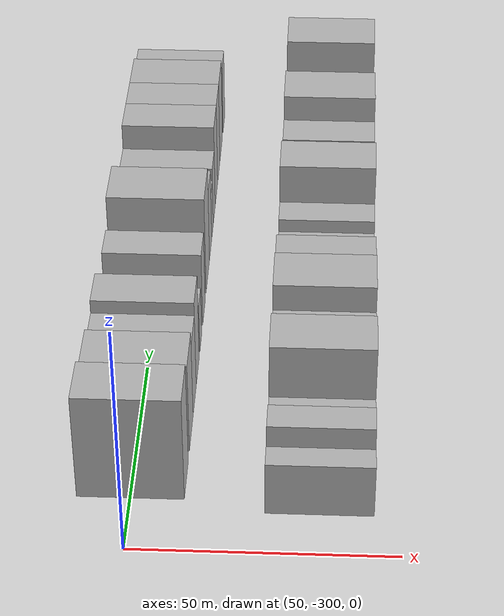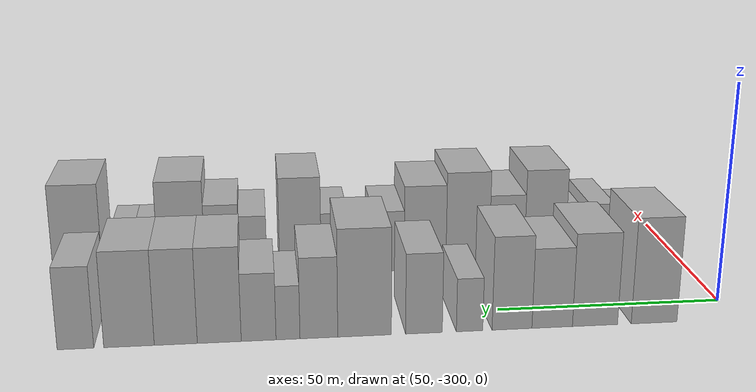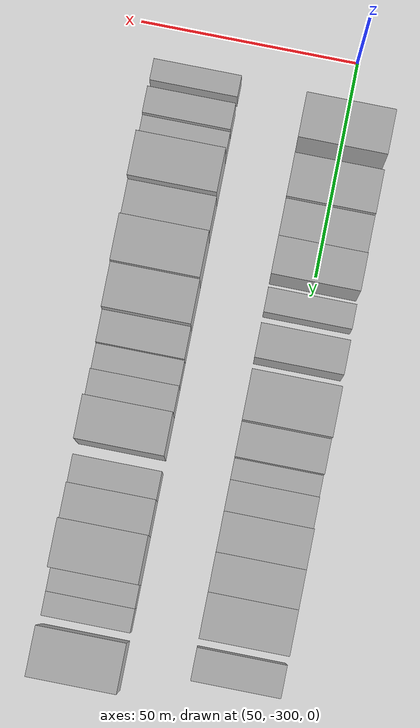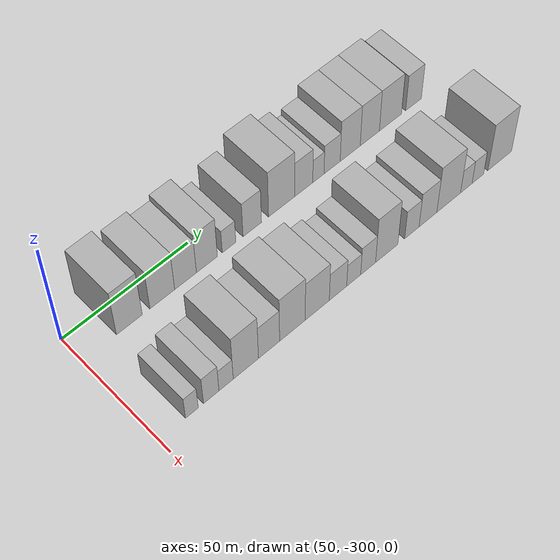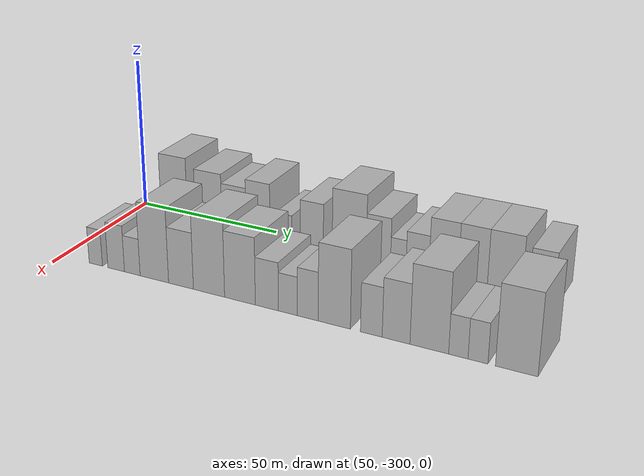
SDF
<sdf version="1.6">
 <world name="default">
  <model name="building_1">
   <static>1</static>
   <pose>50.0000 -281.9514 0 0.000000 0.000000 0.000000</pose>
   <link name="link">
    <pose>0 0 12.00 0 0 0</pose>
    <collision name="collision"><geometry><box><size>20.0000 10.0973 24.0000</size></box></geometry></collision>
    <visual name="visual">
     <cast_shadows>0</cast_shadows>
     <geometry><box><size>20.0000 10.0973 24.0000</size></box></geometry>
     <material>
      <script>
       <uri>model://HANNAS_wall/materials/scripts</uri>
       <uri>model://HANNAS_wall/materials/textures</uri>
       <name>vrc/HANNAS_wall</name>
      </script>
     </material>
    </visual>
   </link>
  </model>
  <model name="building_2">
   <static>1</static>
   <pose>50.0000 -268.9650 0 0.000000 0.000000 0.000000</pose>
   <link name="link">
    <pose>0 0 10.50 0 0 0</pose>
    <collision name="collision"><geometry><box><size>20.0000 9.8755 21.0000</size></box></geometry></collision>
    <visual name="visual">
     <cast_shadows>0</cast_shadows>
     <geometry><box><size>20.0000 9.8755 21.0000</size></box></geometry>
     <material>
      <script>
       <uri>model://HANNAS_wall/materials/scripts</uri>
       <uri>model://HANNAS_wall/materials/textures</uri>
       <name>vrc/HANNAS_wall</name>
      </script>
     </material>
    </visual>
   </link>
  </model>
  <model name="building_3">
   <static>1</static>
   <pose>50.0000 -259.6310 0 0.000000 0.000000 0.000000</pose>
   <link name="link">
    <pose>0 0 9.00 0 0 0</pose>
    <collision name="collision"><geometry><box><size>20.0000 8.7925 18.0000</size></box></geometry></collision>
    <visual name="visual">
     <cast_shadows>0</cast_shadows>
     <geometry><box><size>20.0000 8.7925 18.0000</size></box></geometry>
     <material>
      <script>
       <uri>model://HANNAS_wall/materials/scripts</uri>
       <uri>model://HANNAS_wall/materials/textures</uri>
       <name>vrc/HANNAS_wall</name>
      </script>
     </material>
    </visual>
   </link>
  </model>
  <model name="building_4">
   <static>1</static>
   <pose>50.0000 -250.9372 0 0.000000 0.000000 0.000000</pose>
   <link name="link">
    <pose>0 0 10.50 0 0 0</pose>
    <collision name="collision"><geometry><box><size>20.0000 8.5951 21.0000</size></box></geometry></collision>
    <visual name="visual">
     <cast_shadows>0</cast_shadows>
     <geometry><box><size>20.0000 8.5951 21.0000</size></box></geometry>
     <material>
      <script>
       <uri>model://HANNAS_wall/materials/scripts</uri>
       <uri>model://HANNAS_wall/materials/textures</uri>
       <name>vrc/HANNAS_wall</name>
      </script>
     </material>
    </visual>
   </link>
  </model>
  <model name="building_5">
   <static>1</static>
   <pose>50.0000 -241.8137 0 0.000000 0.000000 0.000000</pose>
   <link name="link">
    <pose>0 0 6.00 0 0 0</pose>
    <collision name="collision"><geometry><box><size>20.0000 5.6519 12.0000</size></box></geometry></collision>
    <visual name="visual">
     <cast_shadows>0</cast_shadows>
     <geometry><box><size>20.0000 5.6519 12.0000</size></box></geometry>
     <material>
      <script>
       <uri>model://HANNAS_wall/materials/scripts</uri>
       <uri>model://HANNAS_wall/materials/textures</uri>
       <name>vrc/HANNAS_wall</name>
      </script>
     </material>
    </visual>
   </link>
  </model>
  <model name="building_6">
   <static>1</static>
   <pose>50.0000 -232.0887 0 0.000000 0.000000 0.000000</pose>
   <link name="link">
    <pose>0 0 9.00 0 0 0</pose>
    <collision name="collision"><geometry><box><size>20.0000 7.7981 18.0000</size></box></geometry></collision>
    <visual name="visual">
     <cast_shadows>0</cast_shadows>
     <geometry><box><size>20.0000 7.7981 18.0000</size></box></geometry>
     <material>
      <script>
       <uri>model://HANNAS_wall/materials/scripts</uri>
       <uri>model://HANNAS_wall/materials/textures</uri>
       <name>vrc/HANNAS_wall</name>
      </script>
     </material>
    </visual>
   </link>
  </model>
  <model name="building_7">
   <static>1</static>
   <pose>50.0000 -219.5472 0 0.000000 0.000000 0.000000</pose>
   <link name="link">
    <pose>0 0 12.00 0 0 0</pose>
    <collision name="collision"><geometry><box><size>20.0000 11.2847 24.0000</size></box></geometry></collision>
    <visual name="visual">
     <cast_shadows>0</cast_shadows>
     <geometry><box><size>20.0000 11.2847 24.0000</size></box></geometry>
     <material>
      <script>
       <uri>model://HANNAS_wall/materials/scripts</uri>
       <uri>model://HANNAS_wall/materials/textures</uri>
       <name>vrc/HANNAS_wall</name>
      </script>
     </material>
    </visual>
   </link>
  </model>
  <model name="building_8">
   <static>1</static>
   <pose>50.0000 -209.9635 0 0.000000 0.000000 0.000000</pose>
   <link name="link">
    <pose>0 0 9.00 0 0 0</pose>
    <collision name="collision"><geometry><box><size>20.0000 7.8828 18.0000</size></box></geometry></collision>
    <visual name="visual">
     <cast_shadows>0</cast_shadows>
     <geometry><box><size>20.0000 7.8828 18.0000</size></box></geometry>
     <material>
      <script>
       <uri>model://HANNAS_wall/materials/scripts</uri>
       <uri>model://HANNAS_wall/materials/textures</uri>
       <name>vrc/HANNAS_wall</name>
      </script>
     </material>
    </visual>
   </link>
  </model>
  <model name="building_9">
   <static>1</static>
   <pose>50.0000 -203.5387 0 0.000000 0.000000 0.000000</pose>
   <link name="link">
    <pose>0 0 6.00 0 0 0</pose>
    <collision name="collision"><geometry><box><size>20.0000 4.9668 12.0000</size></box></geometry></collision>
    <visual name="visual">
     <cast_shadows>0</cast_shadows>
     <geometry><box><size>20.0000 4.9668 12.0000</size></box></geometry>
     <material>
      <script>
       <uri>model://HANNAS_wall/materials/scripts</uri>
       <uri>model://HANNAS_wall/materials/textures</uri>
       <name>vrc/HANNAS_wall</name>
      </script>
     </material>
    </visual>
   </link>
  </model>
  <model name="building_10">
   <static>1</static>
   <pose>50.0000 -197.4601 0 0.000000 0.000000 0.000000</pose>
   <link name="link">
    <pose>0 0 7.50 0 0 0</pose>
    <collision name="collision"><geometry><box><size>20.0000 7.1904 15.0000</size></box></geometry></collision>
    <visual name="visual">
     <cast_shadows>0</cast_shadows>
     <geometry><box><size>20.0000 7.1904 15.0000</size></box></geometry>
     <material>
      <script>
       <uri>model://HANNAS_wall/materials/scripts</uri>
       <uri>model://HANNAS_wall/materials/textures</uri>
       <name>vrc/HANNAS_wall</name>
      </script>
     </material>
    </visual>
   </link>
  </model>
  <model name="building_11">
   <static>1</static>
   <pose>50.0000 -189.3527 0 0.000000 0.000000 0.000000</pose>
   <link name="link">
    <pose>0 0 10.50 0 0 0</pose>
    <collision name="collision"><geometry><box><size>20.0000 9.0244 21.0000</size></box></geometry></collision>
    <visual name="visual">
     <cast_shadows>0</cast_shadows>
     <geometry><box><size>20.0000 9.0244 21.0000</size></box></geometry>
     <material>
      <script>
       <uri>model://HANNAS_wall/materials/scripts</uri>
       <uri>model://HANNAS_wall/materials/textures</uri>
       <name>vrc/HANNAS_wall</name>
      </script>
     </material>
    </visual>
   </link>
  </model>
  <model name="building_12">
   <static>1</static>
   <pose>50.0000 -180.4518 0 0.000000 0.000000 0.000000</pose>
   <link name="link">
    <pose>0 0 10.50 0 0 0</pose>
    <collision name="collision"><geometry><box><size>20.0000 8.7775 21.0000</size></box></geometry></collision>
    <visual name="visual">
     <cast_shadows>0</cast_shadows>
     <geometry><box><size>20.0000 8.7775 21.0000</size></box></geometry>
     <material>
      <script>
       <uri>model://HANNAS_wall/materials/scripts</uri>
       <uri>model://HANNAS_wall/materials/textures</uri>
       <name>vrc/HANNAS_wall</name>
      </script>
     </material>
    </visual>
   </link>
  </model>
  <model name="building_13">
   <static>1</static>
   <pose>50.0000 -170.9487 0 0.000000 0.000000 0.000000</pose>
   <link name="link">
    <pose>0 0 10.50 0 0 0</pose>
    <collision name="collision"><geometry><box><size>20.0000 10.2286 21.0000</size></box></geometry></collision>
    <visual name="visual">
     <cast_shadows>0</cast_shadows>
     <geometry><box><size>20.0000 10.2286 21.0000</size></box></geometry>
     <material>
      <script>
       <uri>model://HANNAS_wall/materials/scripts</uri>
       <uri>model://HANNAS_wall/materials/textures</uri>
       <name>vrc/HANNAS_wall</name>
      </script>
     </material>
    </visual>
   </link>
  </model>
  <model name="building_14">
   <static>1</static>
   <pose>50.0000 -160.1610 0 0.000000 0.000000 0.000000</pose>
   <link name="link">
    <pose>0 0 9.00 0 0 0</pose>
    <collision name="collision"><geometry><box><size>20.0000 7.3468 18.0000</size></box></geometry></collision>
    <visual name="visual">
     <cast_shadows>0</cast_shadows>
     <geometry><box><size>20.0000 7.3468 18.0000</size></box></geometry>
     <material>
      <script>
       <uri>model://HANNAS_wall/materials/scripts</uri>
       <uri>model://HANNAS_wall/materials/textures</uri>
       <name>vrc/HANNAS_wall</name>
      </script>
     </material>
    </visual>
   </link>
  </model>
  <model name="building_67">
   <static>1</static>
   <pose>85.0000 -287.5393 0 0.000000 0.000000 0.000000</pose>
   <link name="link">
    <pose>0 0 6.00 0 0 0</pose>
    <collision name="collision"><geometry><box><size>20.0000 4.9214 12.0000</size></box></geometry></collision>
    <visual name="visual">
     <cast_shadows>0</cast_shadows>
     <geometry><box><size>20.0000 4.9214 12.0000</size></box></geometry>
     <material>
      <script>
       <uri>model://HANNAS_wall/materials/scripts</uri>
       <uri>model://HANNAS_wall/materials/textures</uri>
       <name>vrc/HANNAS_wall</name>
      </script>
     </material>
    </visual>
   </link>
  </model>
  <model name="building_68">
   <static>1</static>
   <pose>85.0000 -280.0650 0 0.000000 0.000000 0.000000</pose>
   <link name="link">
    <pose>0 0 7.50 0 0 0</pose>
    <collision name="collision"><geometry><box><size>20.0000 6.0271 15.0000</size></box></geometry></collision>
    <visual name="visual">
     <cast_shadows>0</cast_shadows>
     <geometry><box><size>20.0000 6.0271 15.0000</size></box></geometry>
     <material>
      <script>
       <uri>model://HANNAS_wall/materials/scripts</uri>
       <uri>model://HANNAS_wall/materials/textures</uri>
       <name>vrc/HANNAS_wall</name>
      </script>
     </material>
    </visual>
   </link>
  </model>
  <model name="building_69">
   <static>1</static>
   <pose>85.0000 -274.2433 0 0.000000 0.000000 0.000000</pose>
   <link name="link">
    <pose>0 0 6.00 0 0 0</pose>
    <collision name="collision"><geometry><box><size>20.0000 5.6163 12.0000</size></box></geometry></collision>
    <visual name="visual">
     <cast_shadows>0</cast_shadows>
     <geometry><box><size>20.0000 5.6163 12.0000</size></box></geometry>
     <material>
      <script>
       <uri>model://HANNAS_wall/materials/scripts</uri>
       <uri>model://HANNAS_wall/materials/textures</uri>
       <name>vrc/HANNAS_wall</name>
      </script>
     </material>
    </visual>
   </link>
  </model>
  <model name="building_70">
   <static>1</static>
   <pose>85.0000 -266.4212 0 0.000000 0.000000 0.000000</pose>
   <link name="link">
    <pose>0 0 12.00 0 0 0</pose>
    <collision name="collision"><geometry><box><size>20.0000 10.0279 24.0000</size></box></geometry></collision>
    <visual name="visual">
     <cast_shadows>0</cast_shadows>
     <geometry><box><size>20.0000 10.0279 24.0000</size></box></geometry>
     <material>
      <script>
       <uri>model://HANNAS_wall/materials/scripts</uri>
       <uri>model://HANNAS_wall/materials/textures</uri>
       <name>vrc/HANNAS_wall</name>
      </script>
     </material>
    </visual>
   </link>
  </model>
  <model name="building_71">
   <static>1</static>
   <pose>85.0000 -257.1396 0 0.000000 0.000000 0.000000</pose>
   <link name="link">
    <pose>0 0 9.00 0 0 0</pose>
    <collision name="collision"><geometry><box><size>20.0000 8.5353 18.0000</size></box></geometry></collision>
    <visual name="visual">
     <cast_shadows>0</cast_shadows>
     <geometry><box><size>20.0000 8.5353 18.0000</size></box></geometry>
     <material>
      <script>
       <uri>model://HANNAS_wall/materials/scripts</uri>
       <uri>model://HANNAS_wall/materials/textures</uri>
       <name>vrc/HANNAS_wall</name>
      </script>
     </material>
    </visual>
   </link>
  </model>
  <model name="building_72">
   <static>1</static>
   <pose>85.0000 -247.6335 0 0.000000 0.000000 0.000000</pose>
   <link name="link">
    <pose>0 0 12.00 0 0 0</pose>
    <collision name="collision"><geometry><box><size>20.0000 10.4768 24.0000</size></box></geometry></collision>
    <visual name="visual">
     <cast_shadows>0</cast_shadows>
     <geometry><box><size>20.0000 10.4768 24.0000</size></box></geometry>
     <material>
      <script>
       <uri>model://HANNAS_wall/materials/scripts</uri>
       <uri>model://HANNAS_wall/materials/textures</uri>
       <name>vrc/HANNAS_wall</name>
      </script>
     </material>
    </visual>
   </link>
  </model>
  <model name="building_73">
   <static>1</static>
   <pose>85.0000 -237.3695 0 0.000000 0.000000 0.000000</pose>
   <link name="link">
    <pose>0 0 10.50 0 0 0</pose>
    <collision name="collision"><geometry><box><size>20.0000 10.0512 21.0000</size></box></geometry></collision>
    <visual name="visual">
     <cast_shadows>0</cast_shadows>
     <geometry><box><size>20.0000 10.0512 21.0000</size></box></geometry>
     <material>
      <script>
       <uri>model://HANNAS_wall/materials/scripts</uri>
       <uri>model://HANNAS_wall/materials/textures</uri>
       <name>vrc/HANNAS_wall</name>
      </script>
     </material>
    </visual>
   </link>
  </model>
  <model name="building_74">
   <static>1</static>
   <pose>85.0000 -228.6623 0 0.000000 0.000000 0.000000</pose>
   <link name="link">
    <pose>0 0 7.50 0 0 0</pose>
    <collision name="collision"><geometry><box><size>20.0000 7.3632 15.0000</size></box></geometry></collision>
    <visual name="visual">
     <cast_shadows>0</cast_shadows>
     <geometry><box><size>20.0000 7.3632 15.0000</size></box></geometry>
     <material>
      <script>
       <uri>model://HANNAS_wall/materials/scripts</uri>
       <uri>model://HANNAS_wall/materials/textures</uri>
       <name>vrc/HANNAS_wall</name>
      </script>
     </material>
    </visual>
   </link>
  </model>
  <model name="building_75">
   <static>1</static>
   <pose>85.0000 -221.9935 0 0.000000 0.000000 0.000000</pose>
   <link name="link">
    <pose>0 0 6.00 0 0 0</pose>
    <collision name="collision"><geometry><box><size>20.0000 5.9743 12.0000</size></box></geometry></collision>
    <visual name="visual">
     <cast_shadows>0</cast_shadows>
     <geometry><box><size>20.0000 5.9743 12.0000</size></box></geometry>
     <material>
      <script>
       <uri>model://HANNAS_wall/materials/scripts</uri>
       <uri>model://HANNAS_wall/materials/textures</uri>
       <name>vrc/HANNAS_wall</name>
      </script>
     </material>
    </visual>
   </link>
  </model>
  <model name="building_76">
   <static>1</static>
   <pose>85.0000 -215.7950 0 0.000000 0.000000 0.000000</pose>
   <link name="link">
    <pose>0 0 7.50 0 0 0</pose>
    <collision name="collision"><geometry><box><size>20.0000 6.4229 15.0000</size></box></geometry></collision>
    <visual name="visual">
     <cast_shadows>0</cast_shadows>
     <geometry><box><size>20.0000 6.4229 15.0000</size></box></geometry>
     <material>
      <script>
       <uri>model://HANNAS_wall/materials/scripts</uri>
       <uri>model://HANNAS_wall/materials/textures</uri>
       <name>vrc/HANNAS_wall</name>
      </script>
     </material>
    </visual>
   </link>
  </model>
  <model name="building_77">
   <static>1</static>
   <pose>85.0000 -207.7056 0 0.000000 0.000000 0.000000</pose>
   <link name="link">
    <pose>0 0 12.00 0 0 0</pose>
    <collision name="collision"><geometry><box><size>20.0000 9.7557 24.0000</size></box></geometry></collision>
    <visual name="visual">
     <cast_shadows>0</cast_shadows>
     <geometry><box><size>20.0000 9.7557 24.0000</size></box></geometry>
     <material>
      <script>
       <uri>model://HANNAS_wall/materials/scripts</uri>
       <uri>model://HANNAS_wall/materials/textures</uri>
       <name>vrc/HANNAS_wall</name>
      </script>
     </material>
    </visual>
   </link>
  </model>
  <model name="building_78">
   <static>1</static>
   <pose>85.0000 -196.6338 0 0.000000 0.000000 0.000000</pose>
   <link name="link">
    <pose>0 0 7.50 0 0 0</pose>
    <collision name="collision"><geometry><box><size>20.0000 6.3879 15.0000</size></box></geometry></collision>
    <visual name="visual">
     <cast_shadows>0</cast_shadows>
     <geometry><box><size>20.0000 6.3879 15.0000</size></box></geometry>
     <material>
      <script>
       <uri>model://HANNAS_wall/materials/scripts</uri>
       <uri>model://HANNAS_wall/materials/textures</uri>
       <name>vrc/HANNAS_wall</name>
      </script>
     </material>
    </visual>
   </link>
  </model>
  <model name="building_79">
   <static>1</static>
   <pose>85.0000 -189.4396 0 0.000000 0.000000 0.000000</pose>
   <link name="link">
    <pose>0 0 9.00 0 0 0</pose>
    <collision name="collision"><geometry><box><size>20.0000 8.0004 18.0000</size></box></geometry></collision>
    <visual name="visual">
     <cast_shadows>0</cast_shadows>
     <geometry><box><size>20.0000 8.0004 18.0000</size></box></geometry>
     <material>
      <script>
       <uri>model://HANNAS_wall/materials/scripts</uri>
       <uri>model://HANNAS_wall/materials/textures</uri>
       <name>vrc/HANNAS_wall</name>
      </script>
     </material>
    </visual>
   </link>
  </model>
  <model name="building_80">
   <static>1</static>
   <pose>85.0000 -180.0102 0 0.000000 0.000000 0.000000</pose>
   <link name="link">
    <pose>0 0 12.00 0 0 0</pose>
    <collision name="collision"><geometry><box><size>20.0000 10.8585 24.0000</size></box></geometry></collision>
    <visual name="visual">
     <cast_shadows>0</cast_shadows>
     <geometry><box><size>20.0000 10.8585 24.0000</size></box></geometry>
     <material>
      <script>
       <uri>model://HANNAS_wall/materials/scripts</uri>
       <uri>model://HANNAS_wall/materials/textures</uri>
       <name>vrc/HANNAS_wall</name>
      </script>
     </material>
    </visual>
   </link>
  </model>
  <model name="building_81">
   <static>1</static>
   <pose>85.0000 -171.9192 0 0.000000 0.000000 0.000000</pose>
   <link name="link">
    <pose>0 0 6.00 0 0 0</pose>
    <collision name="collision"><geometry><box><size>20.0000 5.3234 12.0000</size></box></geometry></collision>
    <visual name="visual">
     <cast_shadows>0</cast_shadows>
     <geometry><box><size>20.0000 5.3234 12.0000</size></box></geometry>
     <material>
      <script>
       <uri>model://HANNAS_wall/materials/scripts</uri>
       <uri>model://HANNAS_wall/materials/textures</uri>
       <name>vrc/HANNAS_wall</name>
      </script>
     </material>
    </visual>
   </link>
  </model>
  <model name="building_82">
   <static>1</static>
   <pose>85.0000 -166.5647 0 0.000000 0.000000 0.000000</pose>
   <link name="link">
    <pose>0 0 6.00 0 0 0</pose>
    <collision name="collision"><geometry><box><size>20.0000 5.3856 12.0000</size></box></geometry></collision>
    <visual name="visual">
     <cast_shadows>0</cast_shadows>
     <geometry><box><size>20.0000 5.3856 12.0000</size></box></geometry>
     <material>
      <script>
       <uri>model://HANNAS_wall/materials/scripts</uri>
       <uri>model://HANNAS_wall/materials/textures</uri>
       <name>vrc/HANNAS_wall</name>
      </script>
     </material>
    </visual>
   </link>
  </model>
  <model name="building_83">
   <static>1</static>
   <pose>85.0000 -156.2718 0 0.000000 0.000000 0.000000</pose>
   <link name="link">
    <pose>0 0 12.00 0 0 0</pose>
    <collision name="collision"><geometry><box><size>20.0000 11.2002 24.0000</size></box></geometry></collision>
    <visual name="visual">
     <cast_shadows>0</cast_shadows>
     <geometry><box><size>20.0000 11.2002 24.0000</size></box></geometry>
     <material>
      <script>
       <uri>model://HANNAS_wall/materials/scripts</uri>
       <uri>model://HANNAS_wall/materials/textures</uri>
       <name>vrc/HANNAS_wall</name>
      </script>
     </material>
    </visual>
   </link>
  </model>
 </world>
</sdf>
